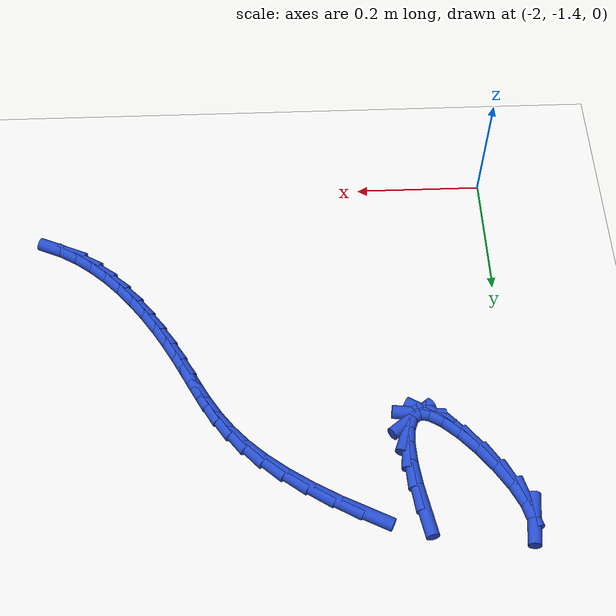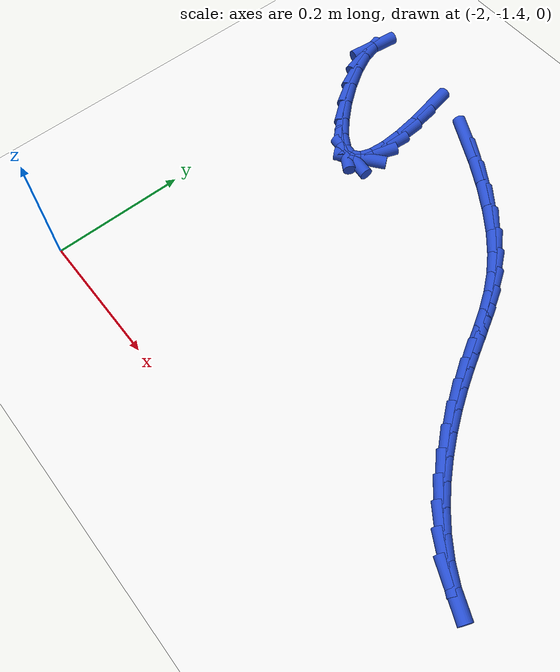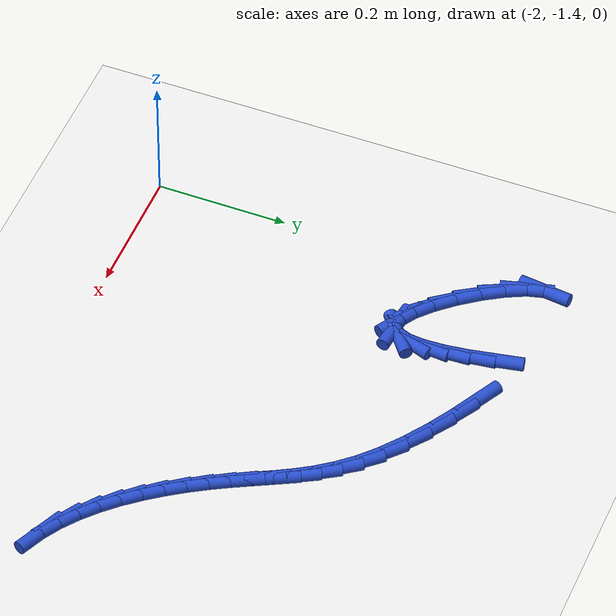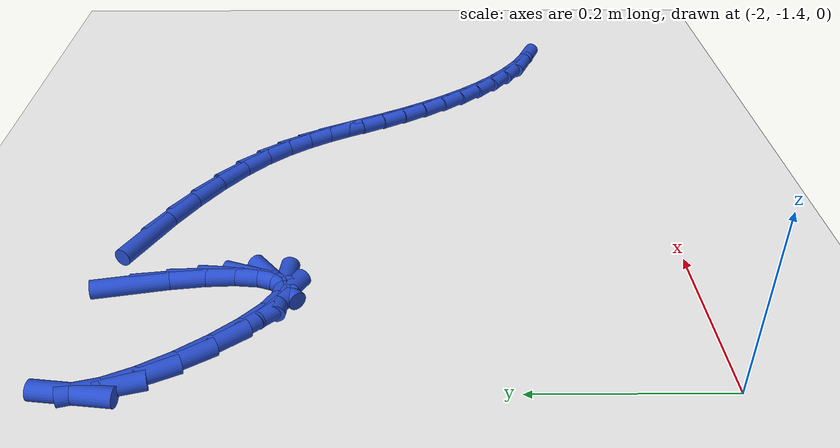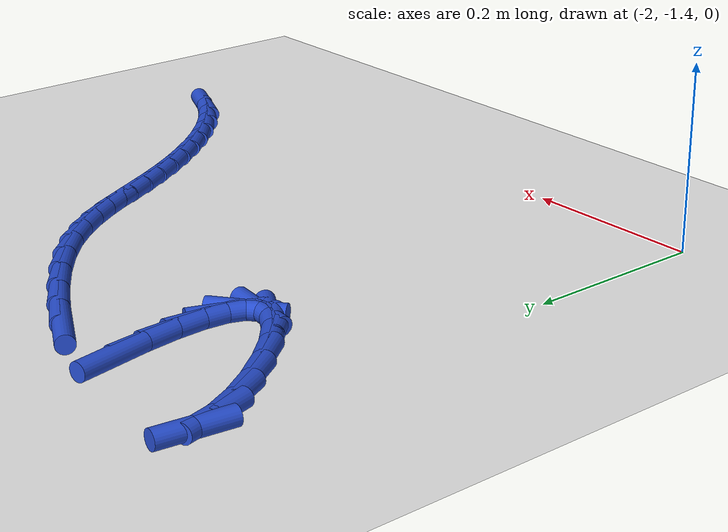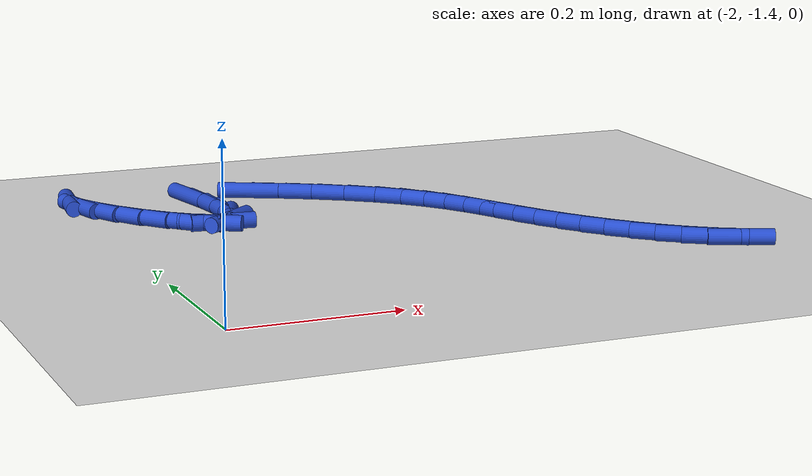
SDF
<sdf version="1.6">
 <world name="default">
  <model name="ground_plane">
   <static>1</static>
   <link name="link">
    <collision name="collision">
     <geometry><plane><normal>0 0 1</normal><size>100 100</size></plane></geometry>
     <surface><friction><ode><mu>100</mu><mu2>50</mu2></ode></friction></surface>
    </collision>
    <visual name="visual">
     <cast_shadows>0</cast_shadows>
     <geometry><plane><normal>0 0 1</normal><size>100 100</size></plane></geometry>
     <material>
      <script><uri>file://media/materials/scripts/gazebo.material</uri><name>Gazebo/WhiteGlow</name></script>
     </material>
    </visual>
   </link>
  </model>
  <model name="line">
   <link name="link_168">
    <pose>-1.8540481221956664 -0.8127811337192464 0.01 0 1.57 -1.3820813445183977</pose>
    <collision name="collision">
     <geometry><cylinder><radius>0.01</radius><length>0.08</length></cylinder></geometry>
    </collision>
    <visual name="visual">
     <material>
      <script><name>Gazebo/Blue</name><uri>file://media/materials/scripts/gazebo.material</uri></script>
     </material>
     <geometry><cylinder><radius>0.01</radius><length>0.08</length></cylinder></geometry>
    </visual>
   </link>
   <link name="link_169">
    <pose>-1.8464729275288108 -0.8524444097324564 0.01 0 1.57 -1.4419155013653715</pose>
    <collision name="collision">
     <geometry><cylinder><radius>0.01</radius><length>0.08</length></cylinder></geometry>
    </collision>
    <visual name="visual">
     <material>
      <script><name>Gazebo/Blue</name><uri>file://media/materials/scripts/gazebo.material</uri></script>
     </material>
     <geometry><cylinder><radius>0.01</radius><length>0.08</length></cylinder></geometry>
    </visual>
   </link>
   <link name="link_170">
    <pose>-1.8417873108186826 -0.8885990883342748 0.01 0 1.57 -1.5264863468078096</pose>
    <collision name="collision">
     <geometry><cylinder><radius>0.01</radius><length>0.08</length></cylinder></geometry>
    </collision>
    <visual name="visual">
     <material>
      <script><name>Gazebo/Blue</name><uri>file://media/materials/scripts/gazebo.material</uri></script>
     </material>
     <geometry><cylinder><radius>0.01</radius><length>0.08</length></cylinder></geometry>
    </visual>
   </link>
   <link name="link_171">
    <pose>-1.8404000500460758 -0.9198866842684175 0.01 0 1.57 1.4784940921132037</pose>
    <collision name="collision">
     <geometry><cylinder><radius>0.01</radius><length>0.08</length></cylinder></geometry>
    </collision>
    <visual name="visual">
     <material>
      <script><name>Gazebo/Blue</name><uri>file://media/materials/scripts/gazebo.material</uri></script>
     </material>
     <geometry><cylinder><radius>0.01</radius><length>0.08</length></cylinder></geometry>
    </visual>
   </link>
   <link name="link_172">
    <pose>-1.8427199231917828 -0.9449487122785993 0.01 0 1.57 1.2179806999387248</pose>
    <collision name="collision">
     <geometry><cylinder><radius>0.01</radius><length>0.08</length></cylinder></geometry>
    </collision>
    <visual name="visual">
     <material>
      <script><name>Gazebo/Blue</name><uri>file://media/materials/scripts/gazebo.material</uri></script>
     </material>
     <geometry><cylinder><radius>0.01</radius><length>0.08</length></cylinder></geometry>
    </visual>
   </link>
   <link name="link_173">
    <pose>-1.849155708236598 -0.9624266871085365 0.01 0 1.57 0.6616467527274759</pose>
    <collision name="collision">
     <geometry><cylinder><radius>0.01</radius><length>0.08</length></cylinder></geometry>
    </collision>
    <visual name="visual">
     <material>
      <script><name>Gazebo/Blue</name><uri>file://media/materials/scripts/gazebo.material</uri></script>
     </material>
     <geometry><cylinder><radius>0.01</radius><length>0.08</length></cylinder></geometry>
    </visual>
   </link>
   <link name="link_174">
    <pose>-1.8601161831613138 -0.970962123501943 0.01 0 1.57 -0.11030484598752895</pose>
    <collision name="collision">
     <geometry><cylinder><radius>0.01</radius><length>0.08</length></cylinder></geometry>
    </collision>
    <visual name="visual">
     <material>
      <script><name>Gazebo/Blue</name><uri>file://media/materials/scripts/gazebo.material</uri></script>
     </material>
     <geometry><cylinder><radius>0.01</radius><length>0.08</length></cylinder></geometry>
    </visual>
   </link>
   <link name="link_175">
    <pose>-1.8760065344531371 -0.9692021971857355 0.01 0 1.57 -0.5399693099415974</pose>
    <collision name="collision">
     <geometry><cylinder><radius>0.01</radius><length>0.08</length></cylinder></geometry>
    </collision>
    <visual name="visual">
     <material>
      <script><name>Gazebo/Blue</name><uri>file://media/materials/scripts/gazebo.material</uri></script>
     </material>
     <geometry><cylinder><radius>0.01</radius><length>0.08</length></cylinder></geometry>
    </visual>
   </link>
   <link name="link_176">
    <pose>-1.89652982495386 -0.9569007850591162 0.01 0 1.57 -0.7250711454712945</pose>
    <collision name="collision">
     <geometry><cylinder><radius>0.01</radius><length>0.08</length></cylinder></geometry>
    </collision>
    <visual name="visual">
     <material>
      <script><name>Gazebo/Blue</name><uri>file://media/materials/scripts/gazebo.material</uri></script>
     </material>
     <geometry><cylinder><radius>0.01</radius><length>0.08</length></cylinder></geometry>
    </visual>
   </link>
   <link name="link_177">
    <pose>-1.919850740736706 -0.9362365839006789 0.01 0 1.57 -0.8337259740162659</pose>
    <collision name="collision">
     <geometry><cylinder><radius>0.01</radius><length>0.08</length></cylinder></geometry>
    </collision>
    <visual name="visual">
     <material>
      <script><name>Gazebo/Blue</name><uri>file://media/materials/scripts/gazebo.material</uri></script>
     </material>
     <geometry><cylinder><radius>0.01</radius><length>0.08</length></cylinder></geometry>
    </visual>
   </link>
   <link name="link_178">
    <pose>-1.9439301099842936 -0.9097096153268561 0.01 0 1.57 -0.9191792939303534</pose>
    <collision name="collision">
     <geometry><cylinder><radius>0.01</radius><length>0.08</length></cylinder></geometry>
    </collision>
    <visual name="visual">
     <material>
      <script><name>Gazebo/Blue</name><uri>file://media/materials/scripts/gazebo.material</uri></script>
     </material>
     <geometry><cylinder><radius>0.01</radius><length>0.08</length></cylinder></geometry>
    </visual>
   </link>
   <link name="link_179">
    <pose>-1.966728760879245 -0.8798199009540831 0.01 0 1.57 -1.0061754975573427</pose>
    <collision name="collision">
     <geometry><cylinder><radius>0.01</radius><length>0.08</length></cylinder></geometry>
    </collision>
    <visual name="visual">
     <material>
      <script><name>Gazebo/Blue</name><uri>file://media/materials/scripts/gazebo.material</uri></script>
     </material>
     <geometry><cylinder><radius>0.01</radius><length>0.08</length></cylinder></geometry>
    </visual>
   </link>
   <link name="link_180">
    <pose>-1.9862075216041815 -0.8490674623987933 0.01 0 1.57 -1.1192523958989036</pose>
    <collision name="collision">
     <geometry><cylinder><radius>0.01</radius><length>0.08</length></cylinder></geometry>
    </collision>
    <visual name="visual">
     <material>
      <script><name>Gazebo/Blue</name><uri>file://media/materials/scripts/gazebo.material</uri></script>
     </material>
     <geometry><cylinder><radius>0.01</radius><length>0.08</length></cylinder></geometry>
    </visual>
   </link>
   <link name="link_181">
    <pose>-2.000327220341724 -0.8199523212774195 0.01 0 1.57 -1.3079260309019105</pose>
    <collision name="collision">
     <geometry><cylinder><radius>0.01</radius><length>0.08</length></cylinder></geometry>
    </collision>
    <visual name="visual">
     <material>
      <script><name>Gazebo/Blue</name><uri>file://media/materials/scripts/gazebo.material</uri></script>
     </material>
     <geometry><cylinder><radius>0.01</radius><length>0.08</length></cylinder></geometry>
    </visual>
   </link>
   <link name="link_182">
    <pose>-2.0070486852744924 -0.7949744992063981 0.01 0 1.57 1.4497279090755506</pose>
    <collision name="collision">
     <geometry><cylinder><radius>0.01</radius><length>0.08</length></cylinder></geometry>
    </collision>
    <visual name="visual">
     <material>
      <script><name>Gazebo/Blue</name><uri>file://media/materials/scripts/gazebo.material</uri></script>
     </material>
     <geometry><cylinder><radius>0.01</radius><length>0.08</length></cylinder></geometry>
    </visual>
   </link>
   <link name="link_191">
    <pose>-1.7723551782932594 -0.8120109422701223 0.01 0 1.57 -0.47604861032384305</pose>
    <collision name="collision">
     <geometry><cylinder><radius>0.01</radius><length>0.08</length></cylinder></geometry>
    </collision>
    <visual name="visual">
     <material>
      <script><name>Gazebo/Blue</name><uri>file://media/materials/scripts/gazebo.material</uri></script>
     </material>
     <geometry><cylinder><radius>0.01</radius><length>0.08</length></cylinder></geometry>
    </visual>
   </link>
   <link name="link_192">
    <pose>-1.7330898575641815 -0.8322560933995278 0.01 0 1.57 -0.5282729242299125</pose>
    <collision name="collision">
     <geometry><cylinder><radius>0.01</radius><length>0.08</length></cylinder></geometry>
    </collision>
    <visual name="visual">
     <material>
      <script><name>Gazebo/Blue</name><uri>file://media/materials/scripts/gazebo.material</uri></script>
     </material>
     <geometry><cylinder><radius>0.01</radius><length>0.08</length></cylinder></geometry>
    </visual>
   </link>
   <link name="link_193">
    <pose>-1.6952339022971195 -0.8543488053033567 0.01 0 1.57 -0.5856722488528419</pose>
    <collision name="collision">
     <geometry><cylinder><radius>0.01</radius><length>0.08</length></cylinder></geometry>
    </collision>
    <visual name="visual">
     <material>
      <script><name>Gazebo/Blue</name><uri>file://media/materials/scripts/gazebo.material</uri></script>
     </material>
     <geometry><cylinder><radius>0.01</radius><length>0.08</length></cylinder></geometry>
    </visual>
   </link>
   <link name="link_194">
    <pose>-1.6598910454746512 -0.8777919277174122 0.01 0 1.57 -0.6535484297536567</pose>
    <collision name="collision">
     <geometry><cylinder><radius>0.01</radius><length>0.08</length></cylinder></geometry>
    </collision>
    <visual name="visual">
     <material>
      <script><name>Gazebo/Blue</name><uri>file://media/materials/scripts/gazebo.material</uri></script>
     </material>
     <geometry><cylinder><radius>0.01</radius><length>0.08</length></cylinder></geometry>
    </visual>
   </link>
   <link name="link_195">
    <pose>-1.6281650200793565 -0.9020883103774979 0.01 0 1.57 -0.7392651895158928</pose>
    <collision name="collision">
     <geometry><cylinder><radius>0.01</radius><length>0.08</length></cylinder></geometry>
    </collision>
    <visual name="visual">
     <material>
      <script><name>Gazebo/Blue</name><uri>file://media/materials/scripts/gazebo.material</uri></script>
     </material>
     <geometry><cylinder><radius>0.01</radius><length>0.08</length></cylinder></geometry>
    </visual>
   </link>
   <link name="link_196">
    <pose>-1.6011128631247722 -0.9267529248622297 0.01 0 1.57 -0.837673841418423</pose>
    <collision name="collision">
     <geometry><cylinder><radius>0.01</radius><length>0.08</length></cylinder></geometry>
    </collision>
    <visual name="visual">
     <material>
      <script><name>Gazebo/Blue</name><uri>file://media/materials/scripts/gazebo.material</uri></script>
     </material>
     <geometry><cylinder><radius>0.01</radius><length>0.08</length></cylinder></geometry>
    </visual>
   </link>
   <link name="link_197">
    <pose>-1.5787665248650757 -0.9515668458169498 0.01 0 1.57 -0.9310288461021194</pose>
    <collision name="collision">
     <geometry><cylinder><radius>0.01</radius><length>0.08</length></cylinder></geometry>
    </collision>
    <visual name="visual">
     <material>
      <script><name>Gazebo/Blue</name><uri>file://media/materials/scripts/gazebo.material</uri></script>
     </material>
     <geometry><cylinder><radius>0.01</radius><length>0.08</length></cylinder></geometry>
    </visual>
   </link>
   <link name="link_198">
    <pose>-1.5601593320590728 -0.9765703813345108 0.01 0 1.57 -1.0093962464499937</pose>
    <collision name="collision">
     <geometry><cylinder><radius>0.01</radius><length>0.08</length></cylinder></geometry>
    </collision>
    <visual name="visual">
     <material>
      <script><name>Gazebo/Blue</name><uri>file://media/materials/scripts/gazebo.material</uri></script>
     </material>
     <geometry><cylinder><radius>0.01</radius><length>0.08</length></cylinder></geometry>
    </visual>
   </link>
   <link name="link_199">
    <pose>-1.5442832092843166 -1.0018145871320987 0.01 0 1.57 -1.0647008709248098</pose>
    <collision name="collision">
     <geometry><cylinder><radius>0.01</radius><length>0.08</length></cylinder></geometry>
    </collision>
    <visual name="visual">
     <material>
      <script><name>Gazebo/Blue</name><uri>file://media/materials/scripts/gazebo.material</uri></script>
     </material>
     <geometry><cylinder><radius>0.01</radius><length>0.08</length></cylinder></geometry>
    </visual>
   </link>
   <link name="link_200">
    <pose>-1.5301300811183656 -1.0273505189268977 0.01 0 1.57 -1.0918466724684515</pose>
    <collision name="collision">
     <geometry><cylinder><radius>0.01</radius><length>0.08</length></cylinder></geometry>
    </collision>
    <visual name="visual">
     <material>
      <script><name>Gazebo/Blue</name><uri>file://media/materials/scripts/gazebo.material</uri></script>
     </material>
     <geometry><cylinder><radius>0.01</radius><length>0.08</length></cylinder></geometry>
    </visual>
   </link>
   <link name="link_201">
    <pose>-1.5166918721387748 -1.0532292324360946 0.01 0 1.57 -1.0891928485381583</pose>
    <collision name="collision">
     <geometry><cylinder><radius>0.01</radius><length>0.08</length></cylinder></geometry>
    </collision>
    <visual name="visual">
     <material>
      <script><name>Gazebo/Blue</name><uri>file://media/materials/scripts/gazebo.material</uri></script>
     </material>
     <geometry><cylinder><radius>0.01</radius><length>0.08</length></cylinder></geometry>
    </visual>
   </link>
   <link name="link_202">
    <pose>-1.5029605069231005 -1.0795017833768752 0.01 0 1.57 -1.0602532273215826</pose>
    <collision name="collision">
     <geometry><cylinder><radius>0.01</radius><length>0.08</length></cylinder></geometry>
    </collision>
    <visual name="visual">
     <material>
      <script><name>Gazebo/Blue</name><uri>file://media/materials/scripts/gazebo.material</uri></script>
     </material>
     <geometry><cylinder><radius>0.01</radius><length>0.08</length></cylinder></geometry>
    </visual>
   </link>
   <link name="link_203">
    <pose>-1.4880213235895992 -1.1061754689988033 0.01 0 1.57 -1.0210071800536724</pose>
    <collision name="collision">
     <geometry><cylinder><radius>0.01</radius><length>0.08</length></cylinder></geometry>
    </collision>
    <visual name="visual">
     <material>
      <script><name>Gazebo/Blue</name><uri>file://media/materials/scripts/gazebo.material</uri></script>
     </material>
     <geometry><cylinder><radius>0.01</radius><length>0.08</length></cylinder></geometry>
    </visual>
   </link>
   <link name="link_204">
    <pose>-1.4716123598353192 -1.1329518371582497 0.01 0 1.57 -0.9768280601464566</pose>
    <collision name="collision">
     <geometry><cylinder><radius>0.01</radius><length>0.08</length></cylinder></geometry>
    </collision>
    <visual name="visual">
     <material>
      <script><name>Gazebo/Blue</name><uri>file://media/materials/scripts/gazebo.material</uri></script>
     </material>
     <geometry><cylinder><radius>0.01</radius><length>0.08</length></cylinder></geometry>
    </visual>
   </link>
   <link name="link_205">
    <pose>-1.4537500733610573 -1.1594020131558411 0.01 0 1.57 -0.9266193948411352</pose>
    <collision name="collision">
     <geometry><cylinder><radius>0.01</radius><length>0.08</length></cylinder></geometry>
    </collision>
    <visual name="visual">
     <material>
      <script><name>Gazebo/Blue</name><uri>file://media/materials/scripts/gazebo.material</uri></script>
     </material>
     <geometry><cylinder><radius>0.01</radius><length>0.08</length></cylinder></geometry>
    </visual>
   </link>
   <link name="link_206">
    <pose>-1.4344519594213025 -1.185096636262456 0.01 0 1.57 -0.8690755353417527</pose>
    <collision name="collision">
     <geometry><cylinder><radius>0.01</radius><length>0.08</length></cylinder></geometry>
    </collision>
    <visual name="visual">
     <material>
      <script><name>Gazebo/Blue</name><uri>file://media/materials/scripts/gazebo.material</uri></script>
     </material>
     <geometry><cylinder><radius>0.01</radius><length>0.08</length></cylinder></geometry>
    </visual>
   </link>
   <link name="link_207">
    <pose>-1.413735513270543 -1.2096063457489727 0.01 0 1.57 -0.8026838230161365</pose>
    <collision name="collision">
     <geometry><cylinder><radius>0.01</radius><length>0.08</length></cylinder></geometry>
    </collision>
    <visual name="visual">
     <material>
      <script><name>Gazebo/Blue</name><uri>file://media/materials/scripts/gazebo.material</uri></script>
     </material>
     <geometry><cylinder><radius>0.01</radius><length>0.08</length></cylinder></geometry>
    </visual>
   </link>
   <link name="link_208">
    <pose>-1.3916182301632687 -1.2325017808862717 0.01 0 1.57 -0.7257468082437308</pose>
    <collision name="collision">
     <geometry><cylinder><radius>0.01</radius><length>0.08</length></cylinder></geometry>
    </collision>
    <visual name="visual">
     <material>
      <script><name>Gazebo/Blue</name><uri>file://media/materials/scripts/gazebo.material</uri></script>
     </material>
     <geometry><cylinder><radius>0.01</radius><length>0.08</length></cylinder></geometry>
    </visual>
   </link>
   <link name="link_209">
    <pose>-1.368117605353968 -1.2533535809452294 0.01 0 1.57 -0.6364884122992058</pose>
    <collision name="collision">
     <geometry><cylinder><radius>0.01</radius><length>0.08</length></cylinder></geometry>
    </collision>
    <visual name="visual">
     <material>
      <script><name>Gazebo/Blue</name><uri>file://media/materials/scripts/gazebo.material</uri></script>
     </material>
     <geometry><cylinder><radius>0.01</radius><length>0.08</length></cylinder></geometry>
    </visual>
   </link>
   <link name="link_210">
    <pose>-1.3432511340971296 -1.2717323851967248 0.01 0 1.57 -0.5333086105278484</pose>
    <collision name="collision">
     <geometry><cylinder><radius>0.01</radius><length>0.08</length></cylinder></geometry>
    </collision>
    <visual name="visual">
     <material>
      <script><name>Gazebo/Blue</name><uri>file://media/materials/scripts/gazebo.material</uri></script>
     </material>
     <geometry><cylinder><radius>0.01</radius><length>0.08</length></cylinder></geometry>
    </visual>
   </link>
   <link name="link_211">
    <pose>-1.3170363116472437 -1.2872088329116371 0.01 0 1.57 -0.4152558083994458</pose>
    <collision name="collision">
     <geometry><cylinder><radius>0.01</radius><length>0.08</length></cylinder></geometry>
    </collision>
    <visual name="visual">
     <material>
      <script><name>Gazebo/Blue</name><uri>file://media/materials/scripts/gazebo.material</uri></script>
     </material>
     <geometry><cylinder><radius>0.01</radius><length>0.08</length></cylinder></geometry>
    </visual>
   </link>
  </model>
 </world>
</sdf>
